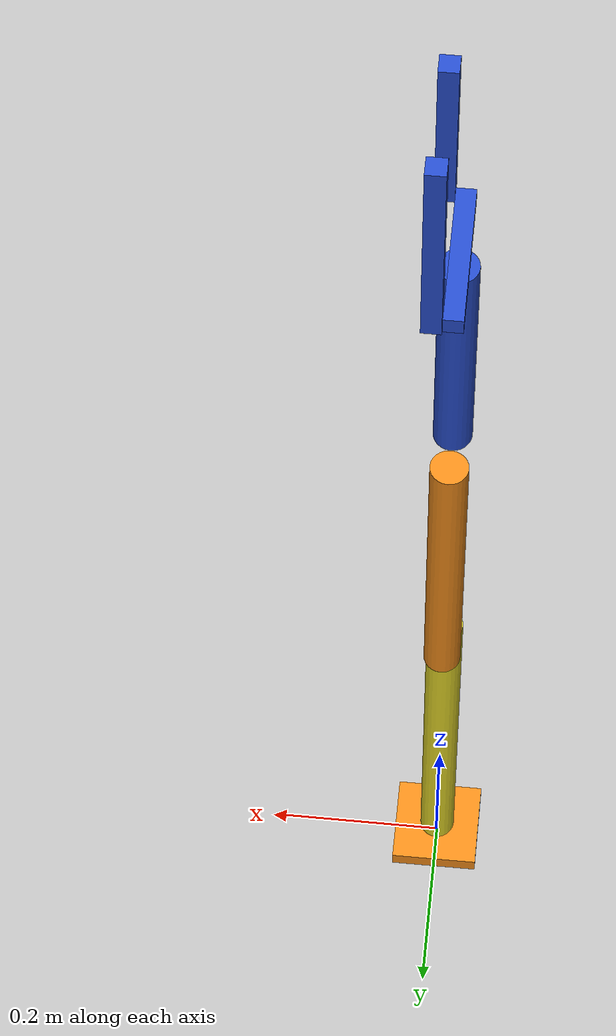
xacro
<?xml version="1.0"?>
<robot xmlns:xacro="http://www.ros.org/wiki/xacro">

    <xacro:property name = "arm_base_length" value = ".1" />
    <xacro:property name = "arm_base_width" value = ".1" />
    <xacro:property name = "arm_base_height" value = ".02" />
    <xacro:property name = "forearm_radius" value = ".02" />
    <xacro:property name = "forearm_length" value = ".5" />
    <xacro:property name = "hand_radius" value = ".02" />
    <xacro:property name = "hand_length" value = ".4" />
    <xacro:property name = "hand_2_radius" value = ".02" />
    <xacro:property name = "hand_2_length" value = ".3" />
    <xacro:property name = "eef_length" value = ".02" />
    <xacro:property name = "eef_width" value = ".15" />
    <xacro:property name = "eef_height" value = ".02" />
    <xacro:property name = "eef_left_length" value = ".02" />
    <xacro:property name = "eef_left_width" value = ".02" />
    <xacro:property name = "eef_left_height" value = ".25" />
    <xacro:property name = "eef_right_length" value = ".02" />
    <xacro:property name = "eef_right_width" value = ".02" />
    <xacro:property name = "eef_right_height" value = ".20" />

    <!-- COMMENT LINE OUT IF NOT USING "STANDALONE ARM" SETUP -->
    <!-- COMMENT LINE OUT IF NOT USING "STANDALONE ARM" SETUP -->

    <link name="arm_base_link">
        <visual>
            <geometry>
                <box size="${arm_base_length} ${arm_base_width} ${arm_base_height}"/>
            </geometry>
            <origin xyz = "0 0 ${arm_base_height/2.0}" rpy="0 0 0" />
            <material name="orange"/>
        </visual>

        <collision>
            <geometry>
                <box size="${arm_base_length} ${arm_base_width} ${arm_base_height}"/>
            </geometry>
            <origin xyz = "0 0 ${arm_base_height/2.0}" rpy="0 0 0" />
        </collision>
        <xacro:box_inertia m = "5.0" x = "${arm_base_length}" y = "${arm_base_width}" z = "${arm_base_height}" o_xyz="0 0 ${arm_base_height/2}" o_rpy="0 0 0"/>
    </link>

    <!-- COMMENT LINE OUT IF NOT USING "STANDALONE ARM" SETUP -->
    <!-- COMMENT LINE OUT IF NOT USING "STANDALONE ARM" SETUP -->

    <link name="forearm_link">
        <visual>
            <geometry>
                <cylinder radius="${forearm_radius}" length = "${forearm_length}" />
            </geometry>
            <origin xyz = "0 0 ${forearm_length/2}" rpy="0 0 0" />
            <material name="yellow"/>
        </visual>

        <collision>
            <geometry>
                <cylinder radius="${forearm_radius}" length = "${forearm_length}" />
            </geometry>
            <origin xyz = "0 0 ${forearm_length/2}" rpy="0 0 0" />
        </collision>

        <xacro:wheel_inertia m = ".1" r = "${forearm_radius}" l = "${forearm_length}"
                                o_xyz="0 0 ${forearm_length/2}" o_rpy="0 0 0"/>

    </link>

    <joint name="base_forearm_joint" type = "revolute">
        <parent link = "arm_base_link"/>
        <child link = "forearm_link"/>
        <origin xyz = "0 0 ${arm_base_height}" rpy = "0 0 0"/>
        <axis xyz = "0 1 0"/>
        <limit lower = "0" upper = "${pi/2}" effort = "100" velocity = "100"/>
        <dynamics friction = "0.3" damping = "1"/>
    </joint>

    <link name="hand_link">
        <visual>
            <geometry>
                <cylinder radius="${hand_radius}" length = "${hand_length}" />
            </geometry>
            <origin xyz = "0 ${forearm_radius*2} ${hand_length/2}" rpy="0 0 0" />
            <material name="orange"/>
        </visual>

        <collision>
            <geometry>
                <cylinder radius="${hand_radius}" length = "${hand_length}" />
            </geometry>
            <origin xyz = "0 ${forearm_radius*2} ${hand_length/2}" rpy="0 0 0" />
        </collision>

        <xacro:wheel_inertia m = ".1" r = "${hand_radius}" l = "${hand_length}"
                                o_xyz="0 ${forearm_radius*2} ${hand_length/2}" o_rpy="0 0 0"/>

    </link>

    <joint name="forearm_hand_joint" type = "revolute">
        <parent link = "forearm_link"/>
        <child link = "hand_link"/>
        <origin xyz = "0 0 ${forearm_length}" rpy = "0 0 0"/>
        <axis xyz = "0 1 0"/>
        <limit lower = "0" upper = "${pi/2}" effort = "100" velocity = "100"/>
        <dynamics friction = "0.3" damping = "1"/>
    </joint>

    <link name="hand_2_link">
        <visual>
            <geometry>
                <cylinder radius="${hand_2_radius}" length = "${hand_2_length}" />
            </geometry>
            <origin xyz = "0 0 ${hand_2_length/2}" rpy="0 0 0" />
            <material name="blue"/>
        </visual>

        <collision>
            <geometry>
                <cylinder radius="${hand_2_radius}" length = "${hand_2_length}" />
            </geometry>
            <origin xyz = "0 0 ${hand_2_length/2}" rpy="0 0 0" />
        </collision>

        <xacro:wheel_inertia m = ".1" r = "${hand_2_radius}" l = "${hand_2_length}"
                                o_xyz="0 0 ${hand_2_length/2}" o_rpy="0 0 0"/>

    </link>

    <joint name="hand_hand_2_joint" type = "revolute">
        <parent link = "hand_link"/>
        <child link = "hand_2_link"/>
        <origin xyz = "0 0 ${hand_length}" rpy = "0 0 0"/>
        <axis xyz = "0 1 0"/>
        <limit lower = "0" upper = "${pi/2}" effort = "100" velocity = "100"/>
        <dynamics friction = "0.9" damping = "1"/>
    </joint>

    <link name="eef_link">
        <visual>
            <geometry>
                <box size="${eef_length} ${eef_width} ${eef_height}"/>
            </geometry>
            <origin xyz = "0 0 ${eef_length/2}" rpy="0 0 0" />
            <material name="blue"/>
        </visual>

        <collision>
            <geometry>
                <box size="${eef_length} ${eef_width} ${eef_height}"/>
            </geometry>
            <origin xyz = "0 0 ${eef_length/2}" rpy="0 0 0" />
        </collision>
        <xacro:box_inertia m = ".01" x = "${eef_length}" y = "${eef_width}" z = "${eef_height}"
                            o_xyz="0 0 ${eef_length/2}" o_rpy="0 0 0"/>
    </link>

    <joint name="hand_2_eef_joint" type = "fixed">
        <parent link = "hand_2_link"/>
        <child link = "eef_link"/>
        <origin xyz = "0 0 ${hand_2_length}" rpy = "0 0 0"/>
        <axis xyz = "0 0 0"/>
    </joint>

    <link name="eef_left_link">
        <visual>
            <geometry>
                <box size="${eef_left_length} ${eef_left_width} ${eef_left_height}"/>
            </geometry>
            <origin xyz = "${eef_right_width} 0 ${eef_left_height/2}" rpy="0 0 0" />
            <material name="blue"/>
        </visual>

        <collision>
            <geometry>
                <box size="${eef_left_length} ${eef_left_width} ${eef_left_height}"/>
            </geometry>
            <origin xyz = "${eef_right_width} 0 ${eef_left_height/2}" rpy="0 0 0" />
        </collision>
        <xacro:box_inertia m = ".01" x = "${eef_left_length}" y = "${eef_left_width}" z = "${eef_left_height}"
                            o_xyz="${eef_right_width} 0 ${eef_left_height/2}" o_rpy="0 0 0"/>
    </link>

    <joint name="eef_eef_left_joint" type = "revolute">
        <parent link = "eef_link"/>
        <child link = "eef_left_link"/>
        <origin xyz = "0 ${eef_width/2} ${eef_height/2}" rpy = "0 0 0"/>
        <axis xyz = "1 0 0"/>
        <limit lower = "0" upper = ".60" effort = "100" velocity = "100"/>
        <dynamics friction = "0.3" damping = "1"/>
    </joint>

    <link name="eef_right_link">
        <visual>
            <geometry>
                <box size="${eef_right_length} ${eef_right_width} ${eef_right_height}"/>
            </geometry>
            <origin xyz = "${eef_right_width} 0 0" rpy="0 0 0" />
            <material name="blue"/>
        </visual>

        <collision>
            <geometry>
                <box size="${eef_right_length} ${eef_right_width} ${eef_right_height}"/>
            </geometry>
            <origin xyz = "${eef_right_width} 0 0" rpy="0 0 0" />
        </collision>
        <xacro:box_inertia m = ".01" x = "${eef_right_length}" y = "${eef_right_width}" z = "${eef_right_height}"
                            o_xyz="${eef_right_width} 0 0" o_rpy="0 0 0"/>
    </link>

    <joint name="eef_eef_right_joint" type = "fixed">
        <parent link = "eef_link"/>
        <child link = "eef_right_link"/>
        <origin xyz = "0 -${eef_width/2} ${eef_height/2+eef_right_height/2}" rpy = "0 0 0"/>
        <axis xyz = "0 0 0"/>
    </joint>

</robot>
